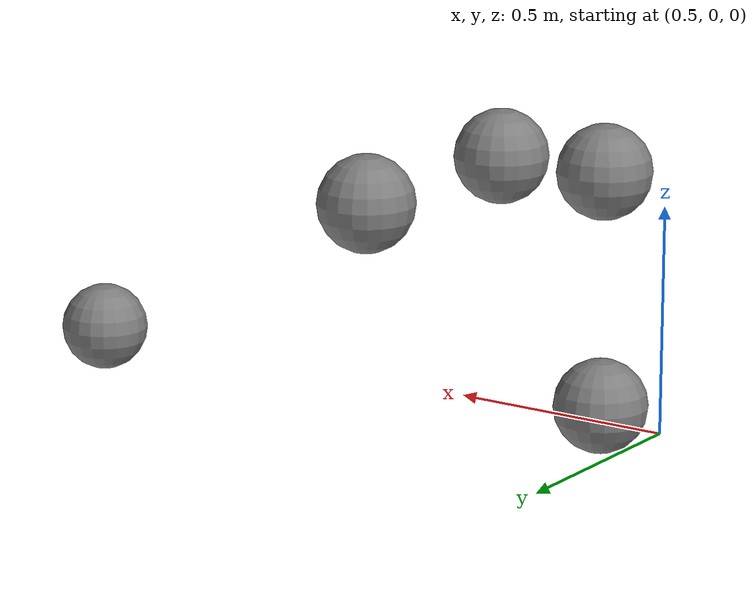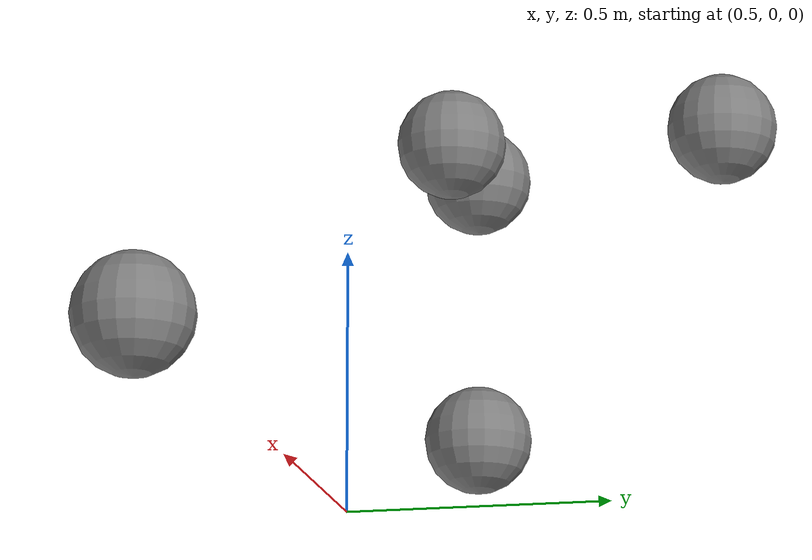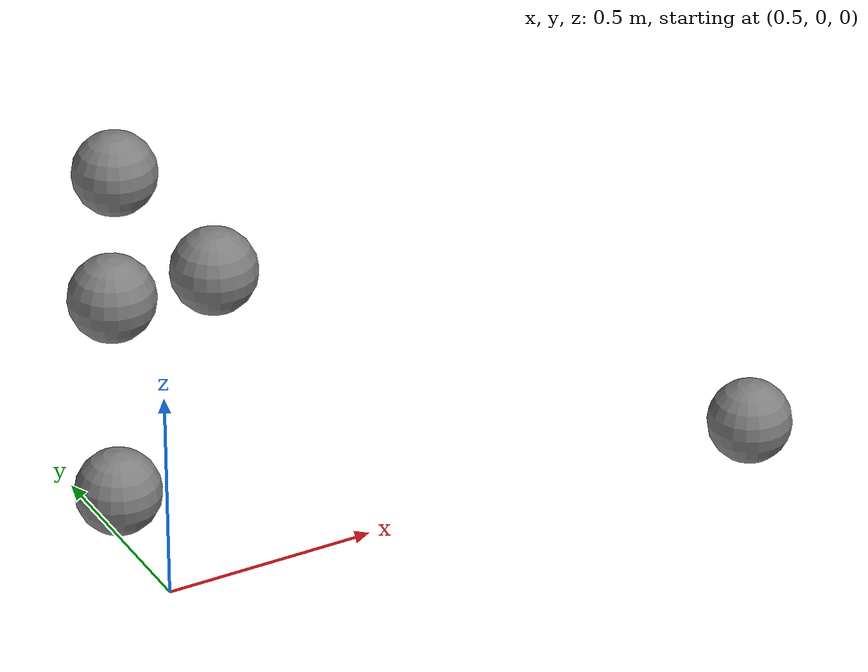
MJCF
<mujoco model="mixed-joints-input-probe">
  <compiler angle="radian"/>
  <worldbody>
    <body name="free" pos="0.5 0.25 0.125">
      <freejoint name="free-joint"/>
      <geom type="sphere" size="0.1" mass="2"/>
      <body name="ball" pos="0 0 0.5">
        <joint name="ball-joint" type="ball"/>
        <geom type="sphere" size="0.1" mass="3"/>
        <body name="slide" pos="0.25 0 0">
          <joint name="slide-joint" type="slide" axis="1 0 0" pos="0.125 0 0" ref="0.25"/>
          <geom type="sphere" size="0.1" mass="4"/>
          <body name="hinge" pos="0 0.5 0">
            <joint name="hinge-joint" type="hinge" axis="0 1 0" pos="0 0.25 0" ref="-0.5"/>
            <geom type="sphere" size="0.1" mass="5"/>
          </body>
        </body>
      </body>
    </body>
    <body name="static" pos="2 0 0">
      <geom type="sphere" size="0.1"/>
    </body>
  </worldbody>
</mujoco>
